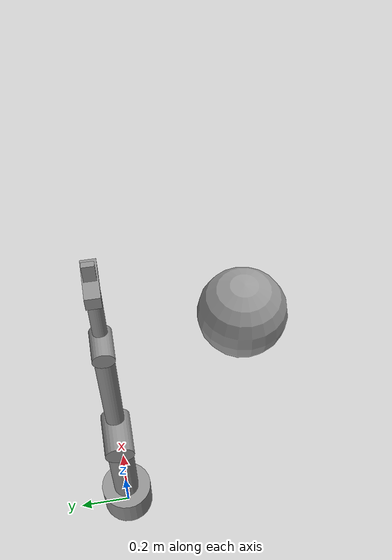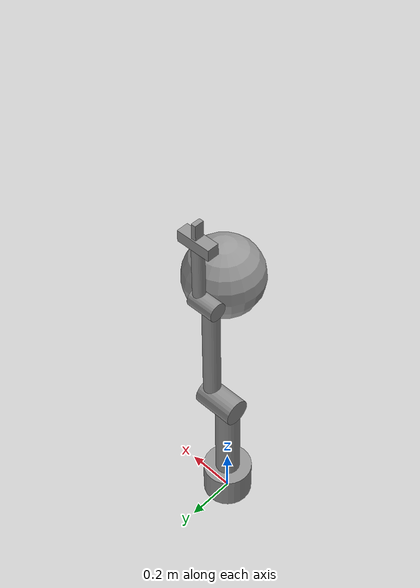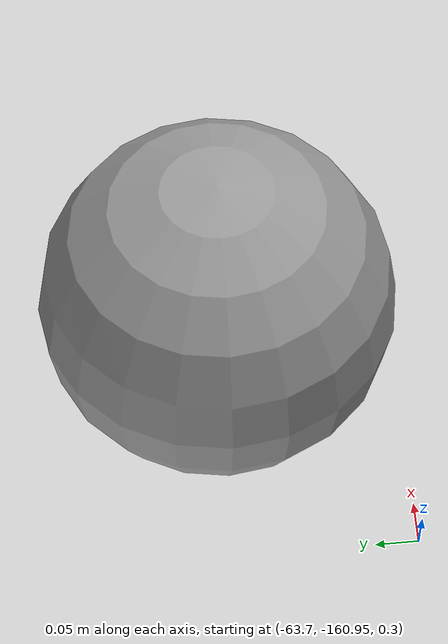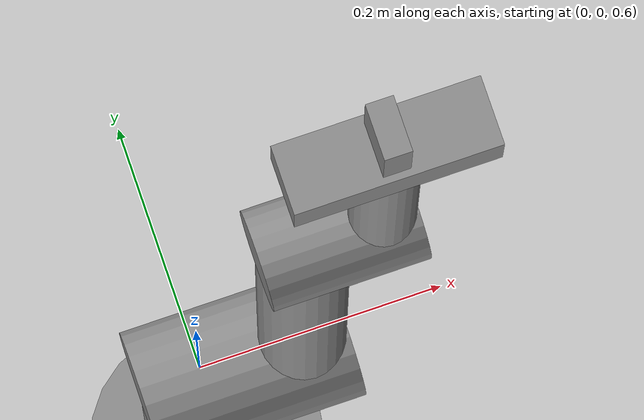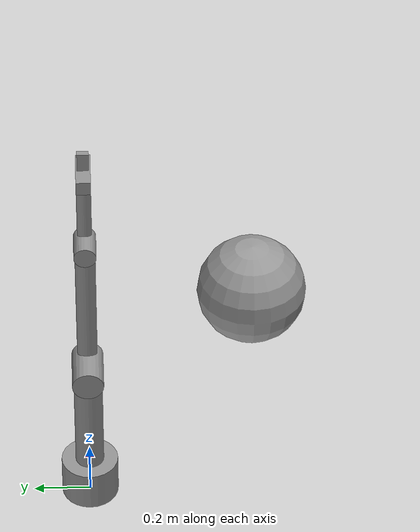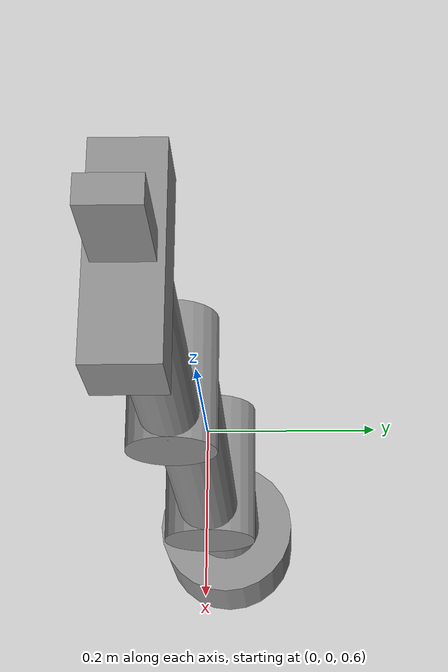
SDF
<sdf version="1.7">
 <world name="default">
  <light name="sun" type="directional">
   <pose>0 0 10 0 -0 0</pose>
   <diffuse>0.8 0.8 0.8 1</diffuse>
   <specular>0.2 0.2 0.2 1</specular>
   <attenuation>
    <range>1000</range>
    <constant>0.9</constant>
    <linear>0.01</linear>
    <quadratic>0.001</quadratic>
   </attenuation>
   <direction>-0.5 0.1 -0.9</direction>
   <spot><inner_angle>0</inner_angle><outer_angle>0</outer_angle><falloff>0</falloff></spot>
  </light>
  <model name="ground_plane">
   <static>1</static>
   <link name="link">
    <collision name="collision">
     <geometry><plane><normal>0 0 1</normal><size>100 100</size></plane></geometry>
     <surface>
      <contact><collide_bitmask>65535</collide_bitmask></contact>
      <friction><ode><mu>100</mu><mu2>50</mu2></ode></friction>
     </surface>
    </collision>
    <visual name="visual">
     <cast_shadows>0</cast_shadows>
     <geometry><plane><normal>0 0 1</normal><size>100 100</size></plane></geometry>
     <material>
      <script><uri>file://media/materials/scripts/gazebo.material</uri><name>Gazebo/Grey</name></script>
     </material>
    </visual>
   </link>
  </model>
  <gravity>0 0 -9.8</gravity>
  <magnetic_field>6e-06 2.3e-05 -4.2e-05</magnetic_field>
  <atmosphere type="adiabatic"/>
  <physics type="ode">
   <max_step_size>0.001</max_step_size>
   <real_time_factor>1</real_time_factor>
   <real_time_update_rate>1000</real_time_update_rate>
  </physics>
  <scene><ambient>0.4 0.4 0.4 1</ambient><background>0.7 0.7 0.7 1</background><shadows>1</shadows></scene>
  <audio><device>default</device></audio>
  <spherical_coordinates>
   <surface_model>EARTH_WGS84</surface_model>
   <latitude_deg>0</latitude_deg>
   <longitude_deg>0</longitude_deg>
   <elevation>0</elevation>
   <heading_deg>0</heading_deg>
  </spherical_coordinates>
  <model name="bot">
   <joint name="world_joint" type="fixed">
    <pose relative_to="__model__">0 0 0 0 -0 0</pose>
    <parent>world</parent>
    <child>base_link</child>
   </joint>
   <link name="base_link">
    <pose relative_to="world_joint">0 0 0 0 -0 0</pose>
    <inertial>
     <pose>0 0 0.075 0 -0 0</pose>
     <mass>20</mass>
     <inertia>
      <ixx>0.104167</ixx>
      <ixy>0</ixy>
      <ixz>0</ixz>
      <iyy>0.104167</iyy>
      <iyz>0</iyz>
      <izz>0.133333</izz>
     </inertia>
    </inertial>
    <collision name="base_link_collision">
     <pose>0 0 0.075 0 -0 0</pose>
     <geometry><cylinder><length>0.15</length><radius>0.1</radius></cylinder></geometry>
    </collision>
    <visual name="base_link_visual">
     <pose>0 0 0.075 0 -0 0</pose>
     <geometry><cylinder><length>0.15</length><radius>0.1</radius></cylinder></geometry>
     <material>
      <ambient>0.589 0.793 1 1</ambient>
      <diffuse>0.566667 0.566667 0.566667 1</diffuse>
      <specular>0.6 0.6 0.6 1</specular>
     </material>
    </visual>
   </link>
   <joint name="joint_1" type="revolute">
    <pose relative_to="base_link">0 0 0.15 0 -0 0</pose>
    <parent>base_link</parent>
    <child>link_1</child>
    <axis>
     <xyz>0 0 1</xyz>
     <limit><lower>0</lower><upper>6.28318</upper><effort>300</effort><velocity>1</velocity></limit>
     <dynamics><spring_reference>0</spring_reference><spring_stiffness>0</spring_stiffness></dynamics>
    </axis>
   </joint>
   <link name="link_1">
    <pose relative_to="joint_1">0 0 0 0 -0 0</pose>
    <inertial>
     <pose>0 0 0.2 0 -0 0</pose>
     <mass>5</mass>
     <inertia>
      <ixx>0.0708333</ixx>
      <ixy>0</ixy>
      <ixz>0</ixz>
      <iyy>0.0708333</iyy>
      <iyz>0</iyz>
      <izz>0.00833333</izz>
     </inertia>
    </inertial>
    <collision name="link_1_collision">
     <pose>0 0 0.2 0 -0 0</pose>
     <geometry><cylinder><length>0.4</length><radius>0.05</radius></cylinder></geometry>
    </collision>
    <visual name="link_1_visual">
     <pose>0 0 0.2 0 -0 0</pose>
     <geometry><cylinder><length>0.4</length><radius>0.05</radius></cylinder></geometry>
     <material>
      <ambient>0.5 0.5 0.5 1</ambient>
      <diffuse>0.566667 0.566667 0.566667 1</diffuse>
      <specular>0.6 0.6 0.6 1</specular>
     </material>
    </visual>
   </link>
   <joint name="joint_2" type="revolute">
    <pose relative_to="link_1">0.085 0 0.4 0 -0 0</pose>
    <parent>link_1</parent>
    <child>link_2</child>
    <axis>
     <xyz>1 0 0</xyz>
     <limit><lower>-3.14159</lower><upper>6.28318</upper><effort>300</effort><velocity>1</velocity></limit>
     <dynamics><spring_reference>0</spring_reference><spring_stiffness>0</spring_stiffness></dynamics>
    </axis>
   </joint>
   <link name="link_2">
    <pose relative_to="joint_2">0 0 0 0 -0 0</pose>
    <inertial>
     <pose>0 0 0.25 0 -0 0</pose>
     <mass>3</mass>
     <inertia>
      <ixx>0.063725</ixx>
      <ixy>0</ixy>
      <ixz>0</ixz>
      <iyy>0.063725</iyy>
      <iyz>0</iyz>
      <izz>0.00245</izz>
     </inertia>
    </inertial>
    <collision name="link_2_collision">
     <pose>0 0 0.25 0 -0 0</pose>
     <geometry><cylinder><length>0.5</length><radius>0.035</radius></cylinder></geometry>
    </collision>
    <visual name="link_2_visual">
     <pose>0 0 0.25 0 -0 0</pose>
     <geometry><cylinder><length>0.5</length><radius>0.035</radius></cylinder></geometry>
     <material>
      <ambient>0.5 0.5 0.5 1</ambient>
      <diffuse>0.566667 0.566667 0.566667 1</diffuse>
      <specular>0.6 0.6 0.6 1</specular>
     </material>
    </visual>
   </link>
   <joint name="joint_3" type="revolute">
    <pose relative_to="link_2">0.06 0 0.465 0 -0 0</pose>
    <parent>link_2</parent>
    <child>link_3</child>
    <axis>
     <xyz>1 0 0</xyz>
     <limit><lower>-3.14159</lower><upper>6.28318</upper><effort>300</effort><velocity>1</velocity></limit>
     <dynamics><spring_reference>0</spring_reference><spring_stiffness>0</spring_stiffness></dynamics>
    </axis>
   </joint>
   <link name="link_3">
    <pose relative_to="joint_3">0 0 0 0 -0 0</pose>
    <inertial>
     <pose>0 0 0.15 0 -0 0</pose>
     <mass>3</mass>
     <inertia>
      <ixx>0.023125</ixx>
      <ixy>0</ixy>
      <ixz>0</ixz>
      <iyy>0.023125</iyy>
      <iyz>0</iyz>
      <izz>0.00125</izz>
     </inertia>
    </inertial>
    <collision name="link_3_collision">
     <pose>0 0 0.15 0 -0 0</pose>
     <geometry><cylinder><length>0.3</length><radius>0.025</radius></cylinder></geometry>
    </collision>
    <visual name="link_3_visual">
     <pose>0 0 0.15 0 -0 0</pose>
     <geometry><cylinder><length>0.3</length><radius>0.025</radius></cylinder></geometry>
     <material>
      <ambient>0.5 0.5 0.5 1</ambient>
      <diffuse>0.566667 0.566667 0.566667 1</diffuse>
      <specular>0.6 0.6 0.6 1</specular>
     </material>
    </visual>
   </link>
   <joint name="joint_4" type="revolute">
    <pose relative_to="link_3">0 0 0.3 0 -0 0</pose>
    <parent>link_3</parent>
    <child>link_4</child>
    <axis>
     <xyz>0 0 1</xyz>
     <limit><lower>-3.14159</lower><upper>6.28318</upper><effort>300</effort><velocity>1</velocity></limit>
     <dynamics><spring_reference>0</spring_reference><spring_stiffness>0</spring_stiffness></dynamics>
    </axis>
   </joint>
   <link name="link_4">
    <pose relative_to="joint_4">0 0 0 0 -0 0</pose>
    <inertial>
     <pose>0 0 0.07502 0 -0 0</pose>
     <mass>1.001</mass>
     <inertia>
      <ixx>0.00208375</ixx>
      <ixy>0</ixy>
      <ixz>0</ixz>
      <iyy>0.00208375</iyy>
      <iyz>0</iyz>
      <izz>0.000416667</izz>
     </inertia>
    </inertial>
    <collision name="link_4_collision">
     <pose>0 0 0.0125 0 -0 0</pose>
     <geometry><box><size>0.05 0.05 0.15</size></box></geometry>
    </collision>
    <collision name="link_4_fixed_joint_lump__gripper_frame_cp_collision_1">
     <pose>0 0 0.095 0 -0 0</pose>
     <geometry><box><size>0.001 0.001 0.001</size></box></geometry>
    </collision>
    <visual name="link_4_visual">
     <pose>0 0 0.0125 3.14159 1.57079 3.14159</pose>
     <geometry><box><size>0.05 0.05 0.15</size></box></geometry>
     <material>
      <ambient>0.5 0.5 0.5 1</ambient>
      <diffuse>0.566667 0.566667 0.566667 1</diffuse>
      <specular>0.6 0.6 0.6 1</specular>
     </material>
    </visual>
    <visual name="link_4_fixed_joint_lump__gripper_frame_cp_visual_1">
     <pose>0 0 0.095 0 -0 0</pose>
     <geometry><box><size>0.001 0.001 0.001</size></box></geometry>
    </visual>
   </link>
   <joint name="gripper_joint_1" type="prismatic">
    <pose relative_to="link_4">0 0 0.06 0 -0 0</pose>
    <parent>link_4</parent>
    <child>gripper_link_1</child>
    <axis>
     <xyz>1 0 0</xyz>
     <limit><lower>0.01</lower><upper>0.05</upper><effort>100</effort><velocity>1</velocity></limit>
     <dynamics><spring_reference>0</spring_reference><spring_stiffness>0</spring_stiffness></dynamics>
    </axis>
   </joint>
   <link name="gripper_link_1">
    <pose relative_to="gripper_joint_1">0 0 0 0 -0 0</pose>
    <inertial>
     <pose>0 0 0.035 0 -0 0</pose>
     <mass>0.2</mass>
     <inertia>
      <ixx>0.000108333</ixx>
      <ixy>0</ixy>
      <ixz>0</ixz>
      <iyy>0.000108333</iyy>
      <iyz>0</iyz>
      <izz>5.33333e-05</izz>
     </inertia>
    </inertial>
    <collision name="gripper_link_1_collision">
     <pose>0 0 0.01 0 -0 0</pose>
     <geometry><box><size>0.04 0.04 0.07</size></box></geometry>
    </collision>
    <visual name="gripper_link_1_visual">
     <pose>0 0 0.01 0 -0 0</pose>
     <geometry><box><size>0.02 0.04 0.07</size></box></geometry>
     <material>
      <ambient>0.5 0.5 0.5 1</ambient>
      <diffuse>0.566667 0.566667 0.566667 1</diffuse>
      <specular>0.6 0.6 0.6 1</specular>
     </material>
    </visual>
   </link>
   <joint name="gripper_joint_2" type="prismatic">
    <pose relative_to="link_4">0 0 0.06 0 -0 0</pose>
    <parent>link_4</parent>
    <child>gripper_link_2</child>
    <axis>
     <xyz>1 0 0</xyz>
     <limit><lower>-0.05</lower><upper>-0.01</upper><effort>100</effort><velocity>1</velocity></limit>
     <dynamics><spring_reference>0</spring_reference><spring_stiffness>0</spring_stiffness></dynamics>
    </axis>
   </joint>
   <link name="gripper_link_2">
    <pose relative_to="gripper_joint_2">0 0 0 0 -0 0</pose>
    <inertial>
     <pose>0 0 0.035 0 -0 0</pose>
     <mass>0.2</mass>
     <inertia>
      <ixx>0.000108333</ixx>
      <ixy>0</ixy>
      <ixz>0</ixz>
      <iyy>0.000108333</iyy>
      <iyz>0</iyz>
      <izz>5.33333e-05</izz>
     </inertia>
    </inertial>
    <collision name="gripper_link_2_collision">
     <pose>0 0 0.01 0 -0 0</pose>
     <geometry><box><size>0.04 0.04 0.07</size></box></geometry>
    </collision>
    <visual name="gripper_link_2_visual">
     <pose>0 0 0.01 0 -0 0</pose>
     <geometry><box><size>0.02 0.04 0.07</size></box></geometry>
     <material>
      <ambient>0.5 0.5 0.5 1</ambient>
      <diffuse>0.566667 0.566667 0.566667 1</diffuse>
      <specular>0.6 0.6 0.6 1</specular>
     </material>
    </visual>
   </link>
   <joint name="link_2_endjoint" type="fixed">
    <pose relative_to="link_2">-0.035 0 0.49 0 1.57079 0</pose>
    <parent>link_2</parent>
    <child>link_2_endlink</child>
    <axis>
     <dynamics><spring_reference>0</spring_reference><spring_stiffness>0</spring_stiffness></dynamics>
     <xyz>0 0 1</xyz>
     <limit><lower>-1e+16</lower><upper>1e+16</upper></limit>
    </axis>
    <physics><ode><limit><cfm>0</cfm><erp>0.2</erp></limit></ode></physics>
   </joint>
   <link name="link_2_endlink">
    <pose relative_to="link_2_endjoint">0 0 0 0 -0 0</pose>
    <inertial>
     <pose>0 0 0.06 0 -0 0</pose>
     <mass>1</mass>
     <inertia>
      <ixx>0.00160833</ixx>
      <ixy>0</ixy>
      <ixz>0</ixz>
      <iyy>0.00160833</iyy>
      <iyz>0</iyz>
      <izz>0.000816667</izz>
     </inertia>
    </inertial>
    <collision name="link_2_endlink_collision">
     <pose>0 0 0.06 0 -0 0</pose>
     <geometry><cylinder><length>0.12</length><radius>0.0385</radius></cylinder></geometry>
    </collision>
    <visual name="link_2_endlink_visual">
     <pose>0 0 0.06 0 -0 0</pose>
     <geometry><cylinder><length>0.12</length><radius>0.0385</radius></cylinder></geometry>
     <material>
      <ambient>0.589 0.793 1 1</ambient>
      <diffuse>0.566667 0.566667 0.566667 1</diffuse>
      <specular>0.6 0.6 0.6 1</specular>
     </material>
    </visual>
   </link>
   <joint name="link_1_endjoint" type="fixed">
    <pose relative_to="link_1">-0.05 0 0.39 0 1.57079 0</pose>
    <parent>link_1</parent>
    <child>link_1_endlink</child>
    <axis>
     <dynamics><spring_reference>0</spring_reference><spring_stiffness>0</spring_stiffness></dynamics>
     <xyz>0 0 1</xyz>
     <limit><lower>-1e+16</lower><upper>1e+16</upper></limit>
    </axis>
    <physics><ode><limit><cfm>0</cfm><erp>0.2</erp></limit></ode></physics>
   </joint>
   <link name="link_1_endlink">
    <pose relative_to="link_1_endjoint">0 0 0 0 -0 0</pose>
    <inertial>
     <pose>0 0 0.085 0 -0 0</pose>
     <mass>1.66667</mass>
     <inertia>
      <ixx>0.00540278</ixx>
      <ixy>0</ixy>
      <ixz>0</ixz>
      <iyy>0.00540278</iyy>
      <iyz>0</iyz>
      <izz>0.00277778</izz>
     </inertia>
    </inertial>
    <collision name="link_1_endlink_collision">
     <pose>0 0 0.085 0 -0 0</pose>
     <geometry><cylinder><length>0.17</length><radius>0.055</radius></cylinder></geometry>
    </collision>
    <visual name="link_1_endlink_visual">
     <pose>0 0 0.085 0 -0 0</pose>
     <geometry><cylinder><length>0.17</length><radius>0.055</radius></cylinder></geometry>
     <material>
      <ambient>0.589 0.793 1 1</ambient>
      <diffuse>0.566667 0.566667 0.566667 1</diffuse>
      <specular>0.6 0.6 0.6 1</specular>
     </material>
    </visual>
   </link>
   <static>0</static>
   <plugin name="gazebo_ros2_control" filename="libgazebo_ros2_control.so">
    <parameters>/home/lou/ROS_workspaces/install/my_bot/share/my_bot/config/joint_position_controller.yaml</parameters>
   </plugin>
  </model>
  <model name="unit_sphere">
   <link name="link">
    <inertial>
     <mass>1</mass>
     <inertia><ixx>0.1</ixx><ixy>0</ixy><ixz>0</ixz><iyy>0.1</iyy><iyz>0</iyz><izz>0.1</izz></inertia>
    </inertial>
    <pose>-0.117609 -1.06567 0 0 -0 0</pose>
    <visual name="visual">
     <geometry><sphere><radius>0.2</radius></sphere></geometry>
     <material>
      <script><name>Gazebo/Grey</name><uri>file://media/materials/scripts/gazebo.material</uri></script>
      <shader type="pixel"><normal_map>__default__</normal_map></shader>
      <ambient>0.3 0.3 0.3 1</ambient>
      <diffuse>0.7 0.7 0.7 1</diffuse>
      <specular>0.01 0.01 0.01 1</specular>
      <emissive>0 0 0 1</emissive>
     </material>
    </visual>
    <collision name="collision">
     <geometry><sphere><radius>0.5</radius></sphere></geometry>
     <surface>
      <friction>
       <ode><mu>1</mu><mu2>1</mu2><fdir1>0 0 0</fdir1><slip1>0</slip1><slip2>0</slip2></ode>
       <torsional>
        <coefficient>1</coefficient>
        <patch_radius>0</patch_radius>
        <surface_radius>0</surface_radius>
        <use_patch_radius>1</use_patch_radius>
        <ode><slip>0</slip></ode>
       </torsional>
      </friction>
      <bounce><restitution_coefficient>0</restitution_coefficient><threshold>1e+06</threshold></bounce>
      <contact>
       <collide_without_contact>0</collide_without_contact>
       <collide_without_contact_bitmask>1</collide_without_contact_bitmask>
       <collide_bitmask>1</collide_bitmask>
       <ode>
        <soft_cfm>0</soft_cfm>
        <soft_erp>0.2</soft_erp>
        <kp>1e+13</kp>
        <kd>1</kd>
        <max_vel>0.01</max_vel>
        <min_depth>0</min_depth>
       </ode>
       <bullet>
        <split_impulse>1</split_impulse>
        <split_impulse_penetration_threshold>-0.01</split_impulse_penetration_threshold>
        <soft_cfm>0</soft_cfm>
        <soft_erp>0.2</soft_erp>
        <kp>1e+13</kp>
        <kd>1</kd>
       </bullet>
      </contact>
     </surface>
    </collision>
   </link>
   <static>0</static>
   <pose>-63.3646 -159.673 0.5 0 -0 0</pose>
  </model>
  <model name="unit_sphere_0">
   <link name="link">
    <inertial>
     <mass>1</mass>
     <inertia><ixx>0.1</ixx><ixy>0</ixy><ixz>0</ixz><iyy>0.1</iyy><iyz>0</iyz><izz>0.1</izz></inertia>
    </inertial>
    <pose>-0.270322 -0.072271 -0.099175 0 -0 0</pose>
    <visual name="visual">
     <geometry><sphere><radius>0.2</radius></sphere></geometry>
     <material>
      <script><name>Gazebo/Grey</name><uri>file://media/materials/scripts/gazebo.material</uri></script>
      <shader type="pixel"><normal_map>__default__</normal_map></shader>
      <ambient>0.3 0.3 0.3 1</ambient>
      <diffuse>0.7 0.7 0.7 1</diffuse>
      <specular>0.01 0.01 0.01 1</specular>
      <emissive>0 0 0 1</emissive>
     </material>
    </visual>
    <collision name="collision">
     <geometry><sphere><radius>0.2</radius></sphere></geometry>
     <surface>
      <friction>
       <ode><mu>1</mu><mu2>1</mu2><fdir1>0 0 0</fdir1><slip1>0</slip1><slip2>0</slip2></ode>
       <torsional>
        <coefficient>1</coefficient>
        <patch_radius>0</patch_radius>
        <surface_radius>0</surface_radius>
        <use_patch_radius>1</use_patch_radius>
        <ode><slip>0</slip></ode>
       </torsional>
      </friction>
      <bounce><restitution_coefficient>0</restitution_coefficient><threshold>1e+06</threshold></bounce>
      <contact>
       <collide_without_contact>0</collide_without_contact>
       <collide_without_contact_bitmask>1</collide_without_contact_bitmask>
       <collide_bitmask>1</collide_bitmask>
       <ode>
        <soft_cfm>0</soft_cfm>
        <soft_erp>0.2</soft_erp>
        <kp>1e+13</kp>
        <kd>1</kd>
        <max_vel>0.01</max_vel>
        <min_depth>0</min_depth>
       </ode>
       <bullet>
        <split_impulse>1</split_impulse>
        <split_impulse_penetration_threshold>-0.01</split_impulse_penetration_threshold>
        <soft_cfm>0</soft_cfm>
        <soft_erp>0.2</soft_erp>
        <kp>1e+13</kp>
        <kd>1</kd>
       </bullet>
      </contact>
     </surface>
    </collision>
   </link>
   <static>0</static>
   <pose>0.872484 -0.532161 0.5 0 -0 0</pose>
  </model>
 </world>
</sdf>
